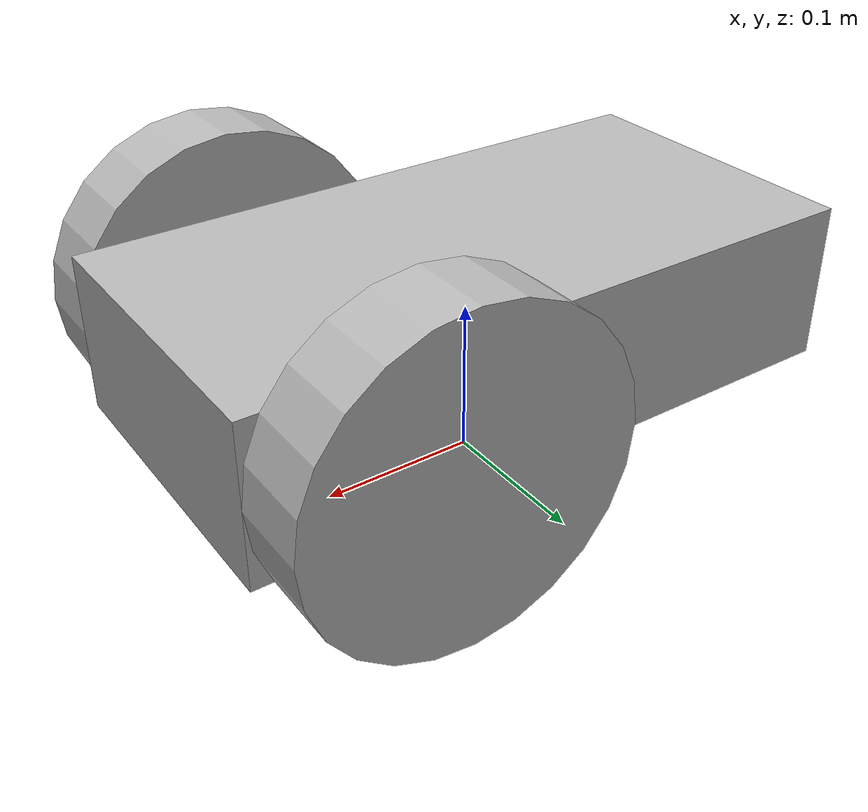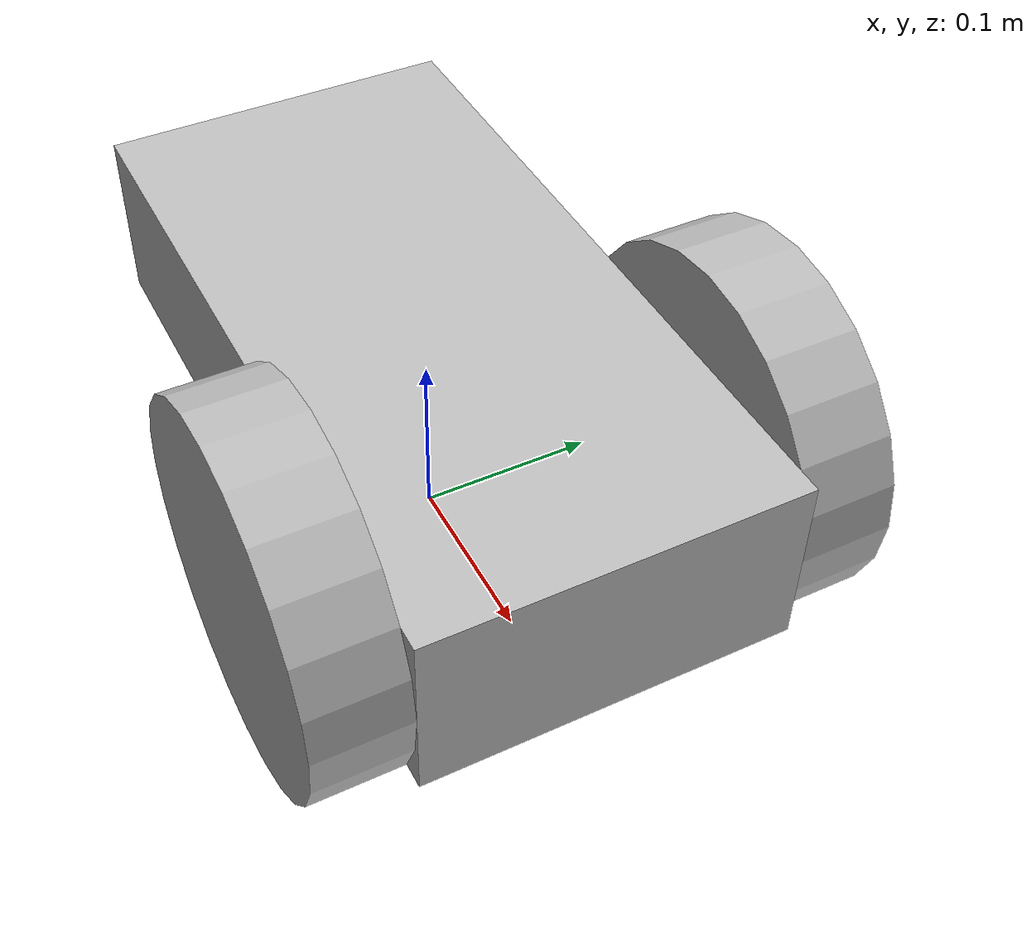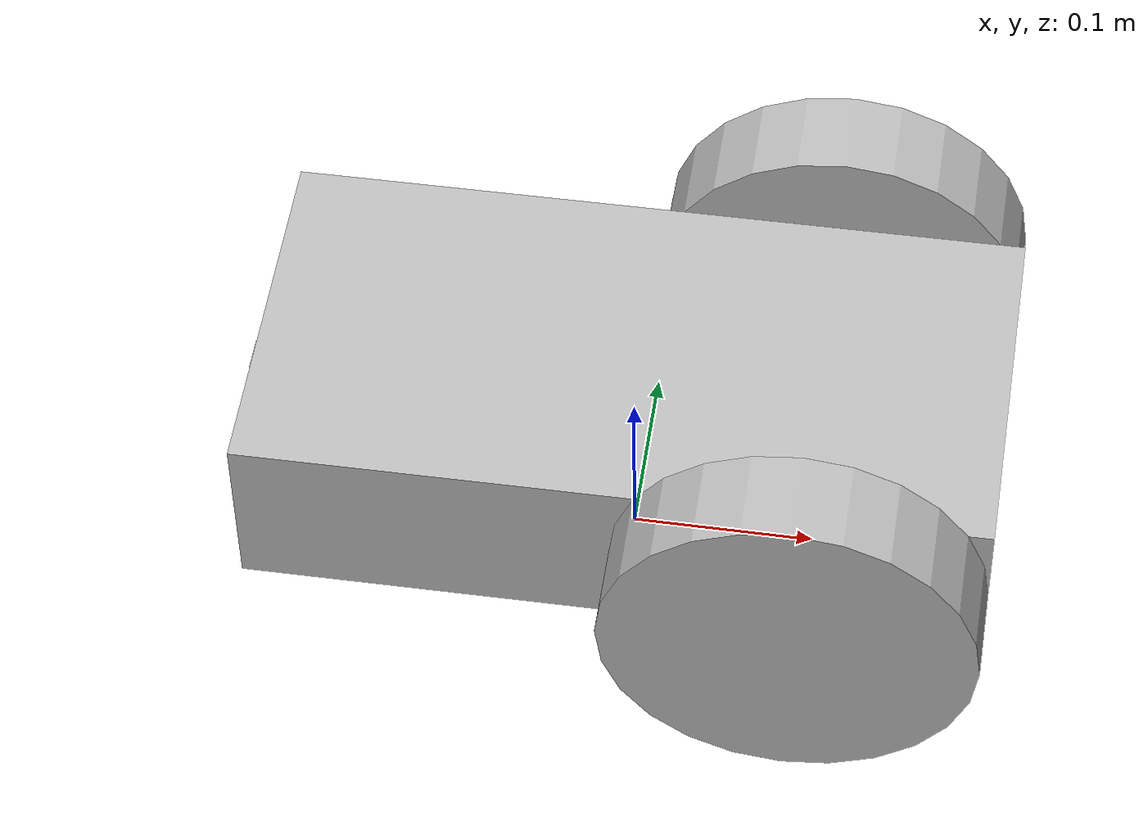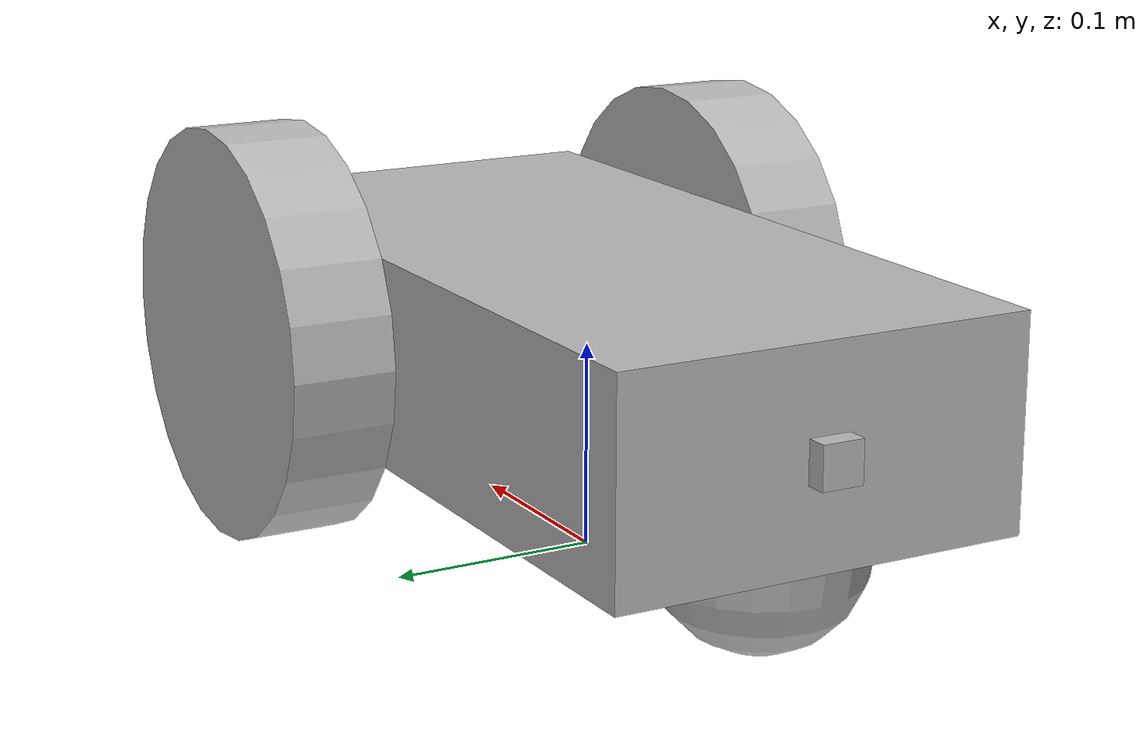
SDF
<?xml version='1.0'?>
<sdf version='1.6'>
  <model name='my_robot_filter'>
    <static>false</static>
    <link name='chassis'>
      <pose>0 0 .1 0 0 0</pose>
      <inertial>
	<mass>0.2</mass>
	<inertia>
          <ixx>0.00083</ixx>       <!-- for a box: ixx = 0.083 * mass * (y*y + z*z) -->
          <ixy>0.0</ixy>           <!-- for a box: ixy = 0 -->
          <ixz>0.0</ixz>           <!-- for a box: ixz = 0 -->
          <iyy>0.002822</iyy>      <!-- for a box: iyy = 0.083 * mass * (x*x + z*z) -->
          <iyz>0.0</iyz>           <!-- for a box: iyz = 0 -->
          <izz>0.00332</izz>       <!-- for a box: izz = 0.083 * mass * (x*x + y*y) -->
	</inertia>
      </inertial>
      <collision name='collision'>
        <geometry>
          <box>
            <size>.4 .2 .1</size>
          </box>
        </geometry>
      </collision>
      <visual name='visual'>
        <geometry>
          <box>
            <size>.4 .2 .1</size>
          </box>
        </geometry>
      </visual>
      <collision name='caster_collision'>
        <pose>-0.15 0 -0.05 0 0 0</pose>
        <geometry>
          <sphere>
            <radius>.05</radius>
          </sphere>
        </geometry>
        <surface>
          <friction>
            <ode>
              <mu>0</mu>
              <mu2>0</mu2>
              <slip1>1.0</slip1>
              <slip2>1.0</slip2>
            </ode>
          </friction>
        </surface>
      </collision>
      <visual name='caster_visual'>
        <pose>-0.15 0 -0.05 0 0 0</pose>
        <geometry>
          <sphere>
            <radius>.05</radius>
          </sphere>
        </geometry>
      </visual>
    </link>

    <link name="right_wheel">
      <pose>0.1 0.125 0.1 0 1.5707 -1.5707</pose>
      <inertial>
	<mass>0.1</mass>
	<inertia>
          <ixx>0.00026975</ixx>
          <iyy>0.00026975</iyy>
          <izz>0.0005</izz>
          <ixy>0</ixy>
          <ixz>0</ixz>
          <iyz>0</iyz>
	</inertia>
      </inertial>
      <collision name="collision">
        <geometry>
          <cylinder>
            <radius>.1</radius>
            <length>.05</length>
          </cylinder>
        </geometry>
	<surface>
          <friction>
            <ode>
              <mu>0.72</mu>
              <mu2>0.72</mu2>
            </ode>
          </friction>
        </surface>
      </collision>
      <visual name="visual">
        <geometry>
          <cylinder>
            <radius>.1</radius>
            <length>.05</length>
          </cylinder>
        </geometry>
      </visual>
    </link>

    <link name="left_wheel">
      <pose>0.1 -0.125 0.1 0 1.5707 -1.5707</pose>
      <inertial>
	<mass>0.1</mass>
	<inertia>
          <ixx>0.00026975</ixx>
          <iyy>0.00026975</iyy>
          <izz>0.0005</izz>
          <ixy>0</ixy>
          <ixz>0</ixz>
          <iyz>0</iyz>
	</inertia>
      </inertial>
      <collision name="collision">
        <geometry>
          <cylinder>
            <radius>.1</radius>
            <length>.05</length>
          </cylinder>
        </geometry>
	<surface>
          <friction>
            <ode>
              <mu>0.72</mu>
              <mu2>0.72</mu2>
            </ode>
          </friction>
        </surface>
      </collision>
      <visual name="visual">
        <geometry>
          <cylinder>
            <radius>.1</radius>
            <length>.05</length>
          </cylinder>
        </geometry>
      </visual>
    </link>

    <link name='camera_link'>
      <pose>-0.2 0 0.1 0 0 3.14159</pose>
      <inertial>
        <mass>0.01</mass>
        <inertia>
          <ixx>0.000000664</ixx>
          <iyy>0.000000664</iyy>
          <izz>0.000000664</izz>
          <ixy>0</ixy>
          <ixz>0</ixz>
          <iyz>0</iyz>
        </inertia>
      </inertial>
      <collision name='collision'>
        <geometry>
          <box>
	    <size>0.02 0.02 0.02</size>
          </box>
        </geometry>
      </collision>
      <visual name='visual'>
        <geometry>
          <box>
	    <size>0.02 0.02 0.02</size>
          </box>
        </geometry>
      </visual>
      <sensor name='camera_filter' type='depth'>
        <camera name='__default__'>
          <horizontal_fov>1.047</horizontal_fov>
          <image>
	    <width>320</width>
	    <height>240</height>
          </image>
          <clip>
	    <near>0.1</near>
	    <far>100</far>
          </clip>
        </camera>
	<plugin name="camera_filter_plugin" filename="libgazebo_ros_openni_kinect.so">
          <baseline>0.2</baseline>
          <alwaysOn>true</alwaysOn>
          <updateRate>0.0</updateRate>
          <cameraName>camera_filter</cameraName>
          <imageTopicName>/camera_filter/color/image_raw</imageTopicName>
          <cameraInfoTopicName>/camera_filter/color/camera_info</cameraInfoTopicName>
          <depthImageTopicName>/camera_filter/depth/image_raw</depthImageTopicName>
          <depthImageCameraInfoTopicName>/camera_filter/depth/camera_info</depthImageCameraInfoTopicName>
          <pointCloudTopicName>/camera_filter/depth/points</pointCloudTopicName>
          <frameName>camera_link</frameName>
          <pointCloudCutoff>0.1</pointCloudCutoff>
          <pointCloudCutoffMax>10.0</pointCloudCutoffMax>
          <distortionK1>0</distortionK1>
          <distortionK2>0</distortionK2>
          <distortionK3>0</distortionK3>
          <distortionT1>0</distortionT1>
          <distortionT2>0</distortionT2>
          <CxPrime>0</CxPrime>
          <Cx>0</Cx>
          <Cy>0</Cy>
          <focalLength>0</focalLength>
          <hackBaseline>0</hackBaseline>
        </plugin>
        <always_on>1</always_on>
        <update_rate>30</update_rate>
        <visualize>1</visualize>
      </sensor>
    </link>

    <joint name="camara_joint" type="fixed">
      <child>camera_link</child>
      <parent>chassis</parent>
    </joint>

    <joint type="revolute" name="right_wheel_hinge">
      <pose>0 0 0 0 0 0</pose>
      <child>right_wheel</child>
      <parent>chassis</parent>
      <axis>
        <xyz>0 0 1</xyz>
      </axis>
    </joint>

    <joint type="revolute" name="left_wheel_hinge">
      <pose>0 0 0 0 0 0</pose>
      <child>left_wheel</child>
      <parent>chassis</parent>
      <axis>
        <xyz>0 0 1</xyz>
      </axis>
    </joint>
  </model>
</sdf>
